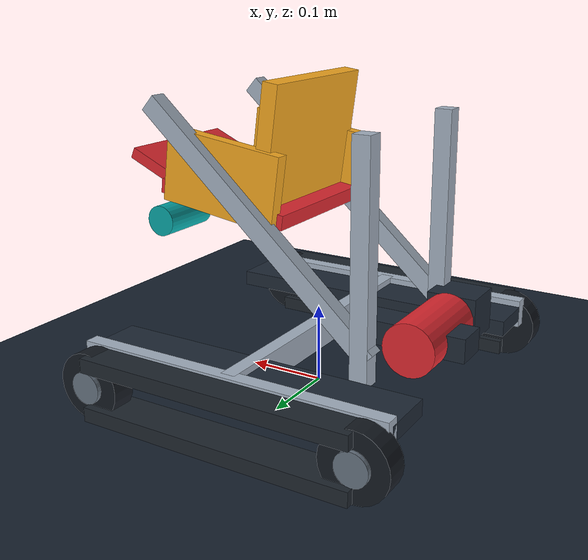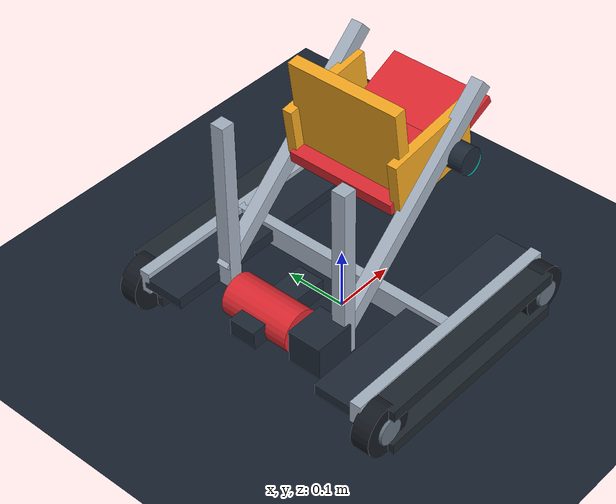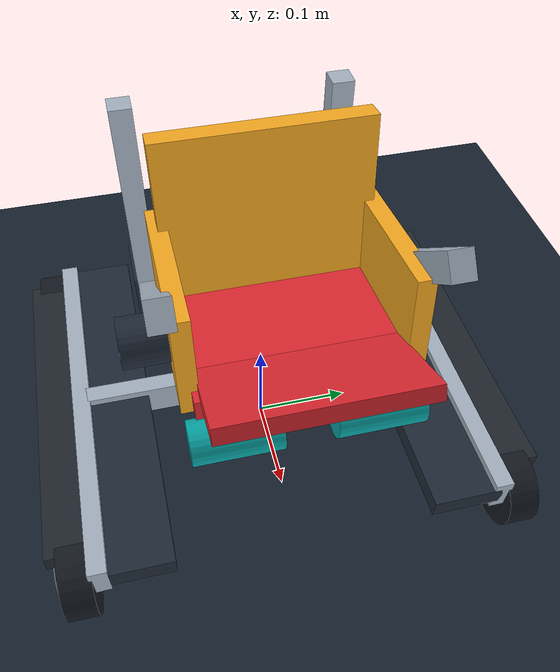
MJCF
<mujoco model="Inclined Winch Cradle"><compiler angle="degree" /><visual><global offwidth="800" offheight="600" /><quality offsamples="0" /><headlight ambient=".45 .45 .45" /></visual><worldbody><light pos="0 -1 3" castshadow="false" /><geom type="plane" size="2 2 .1" rgba=".09 .13 .18 1" /><geom type="box" pos="0 -0.195 0.066275" size="0.2 0.009 0.018" euler="0 0 0" rgba=".65 .7 .76 1" contype="0" conaffinity="0" /><geom type="box" pos="0 0.195 0.066275" size="0.2 0.009 0.018" euler="0 0 0" rgba=".65 .7 .76 1" contype="0" conaffinity="0" /><geom type="box" pos="0 0 0.066275" size="0.009 0.195 0.018" euler="0 0 0" rgba=".65 .7 .76 1" contype="0" conaffinity="0" /><geom type="box" pos="0 -0.16 0.066275" size="0.2 0.035 0.01" euler="0 0 0" rgba=".12 .16 .21 1" contype="0" conaffinity="0" /><geom type="box" pos="0 0.16 0.066275" size="0.2 0.035 0.01" euler="0 0 0" rgba=".12 .16 .21 1" contype="0" conaffinity="0" /><geom type="cylinder" pos="-0.175 -0.216 0.041275" size="0.041275 0.015" euler="90 0 0" rgba=".08 .1 .13 1" contype="0" conaffinity="0" /><geom type="cylinder" pos="-0.175 -0.233 0.041275" size="0.019812 0.003" euler="90 0 0" rgba=".4 .45 .5 1" contype="0" conaffinity="0" /><geom type="cylinder" pos="0.175 -0.216 0.041275" size="0.041275 0.015" euler="90 0 0" rgba=".08 .1 .13 1" contype="0" conaffinity="0" /><geom type="cylinder" pos="0.175 -0.233 0.041275" size="0.019812 0.003" euler="90 0 0" rgba=".4 .45 .5 1" contype="0" conaffinity="0" /><geom type="box" pos="0 -0.216 0.01031875" size="0.175 0.025 0.009" euler="0 0 0" rgba=".12 .15 .18 1" contype="0" conaffinity="0" /><geom type="box" pos="0 -0.216 0.07223125" size="0.175 0.025 0.009" euler="0 0 0" rgba=".12 .15 .18 1" contype="0" conaffinity="0" /><geom type="cylinder" pos="-0.175 0.216 0.041275" size="0.041275 0.015" euler="90 0 0" rgba=".08 .1 .13 1" contype="0" conaffinity="0" /><geom type="cylinder" pos="-0.175 0.233 0.041275" size="0.019812 0.003" euler="90 0 0" rgba=".4 .45 .5 1" contype="0" conaffinity="0" /><geom type="cylinder" pos="0.175 0.216 0.041275" size="0.041275 0.015" euler="90 0 0" rgba=".08 .1 .13 1" contype="0" conaffinity="0" /><geom type="cylinder" pos="0.175 0.233 0.041275" size="0.019812 0.003" euler="90 0 0" rgba=".4 .45 .5 1" contype="0" conaffinity="0" /><geom type="box" pos="0 0.216 0.01031875" size="0.175 0.025 0.009" euler="0 0 0" rgba=".12 .15 .18 1" contype="0" conaffinity="0" /><geom type="box" pos="0 0.216 0.07223125" size="0.175 0.025 0.009" euler="0 0 0" rgba=".12 .15 .18 1" contype="0" conaffinity="0" /><geom type="box" pos="-0.135 0.0 0.091275" size="0.07 0.022 0.015" euler="0 0 0" rgba=".12 .16 .21 1" contype="0" conaffinity="0" /><geom type="box" pos="0.018 0.105 0.227" size="0.195 0.01 0.012" euler="0.0 -42.0 0.0" rgba=".65 .7 .76 1" contype="0" conaffinity="0" /><geom type="box" pos="0.018 -0.105 0.227" size="0.195 0.01 0.012" euler="0.0 -42.0 0.0" rgba=".65 .7 .76 1" contype="0" conaffinity="0" /><geom type="box" pos="-0.118 0.105 0.205" size="0.011 0.011 0.14" euler="0.0 0.0 0.0" rgba=".65 .7 .76 1" contype="0" conaffinity="0" /><geom type="box" pos="-0.118 -0.105 0.205" size="0.011 0.011 0.14" euler="0.0 0.0 0.0" rgba=".65 .7 .76 1" contype="0" conaffinity="0" /><geom type="box" pos="0.082 0.0 0.242" size="0.0875 0.09 0.009" euler="0.0 -8.0 0.0" rgba=".87 .16 .19 1" contype="0" conaffinity="0" /><geom type="box" pos="0.017 0.0 0.315" size="0.01 0.0925 0.0725" euler="0.0 -8.0 0.0" rgba=".96 .66 .13 1" contype="0" conaffinity="0" /><geom type="box" pos="0.075 0.092 0.274" size="0.0775 0.008 0.045" euler="0.0 -8.0 0.0" rgba=".96 .66 .13 1" contype="0" conaffinity="0" /><geom type="box" pos="0.075 -0.092 0.274" size="0.0775 0.008 0.045" euler="0.0 -8.0 0.0" rgba=".96 .66 .13 1" contype="0" conaffinity="0" /><geom type="cylinder" pos="0.167 0.06 0.211" size="0.019 0.038" euler="90.0 0.0 0.0" rgba=".03 .65 .65 1" contype="0" conaffinity="0" /><geom type="cylinder" pos="0.167 -0.06 0.211" size="0.019 0.038" euler="90.0 0.0 0.0" rgba=".03 .65 .65 1" contype="0" conaffinity="0" /><geom type="box" pos="0.166 0.0 0.266" size="0.056 0.085 0.007" euler="0.0 -24.0 0.0" rgba=".87 .16 .19 1" contype="0" conaffinity="0" /><geom type="cylinder" pos="-0.151 0.0 0.094" size="0.033 0.058" euler="90.0 0.0 0.0" rgba=".87 .16 .19 1" contype="0" conaffinity="0" /><geom type="box" pos="-0.151 -0.092 0.094" size="0.032 0.0275 0.0275" euler="0.0 0.0 0.0" rgba=".12 .16 .21 1" contype="0" conaffinity="0" /><geom type="cylinder" pos="0.105 -0.112 0.273" size="0.021 0.026" euler="90.0 0.0 0.0" rgba=".12 .16 .21 1" contype="0" conaffinity="0" /></worldbody></mujoco>
